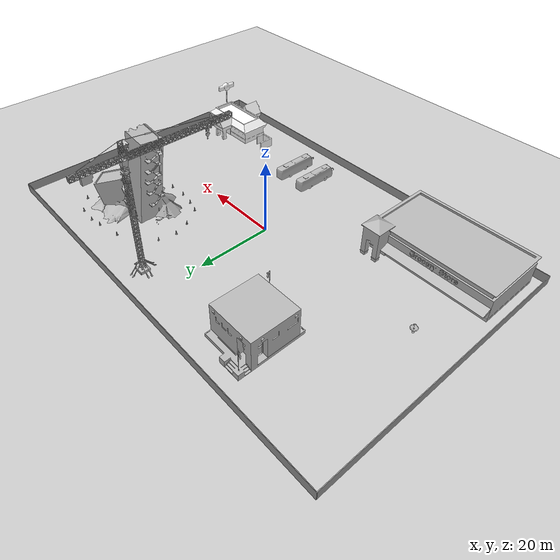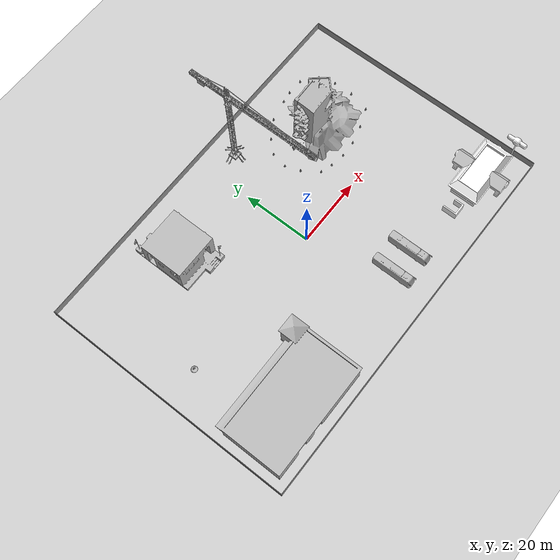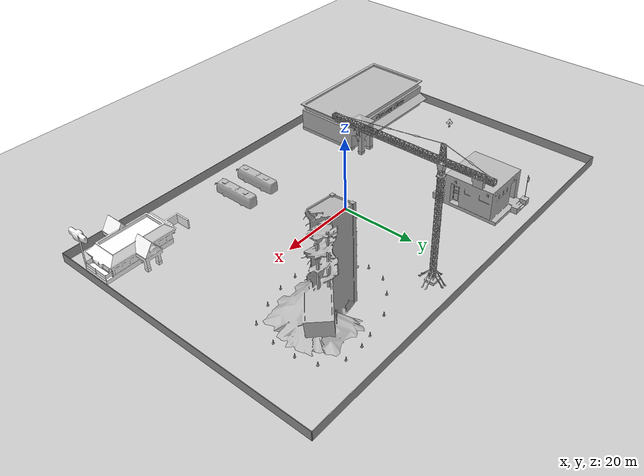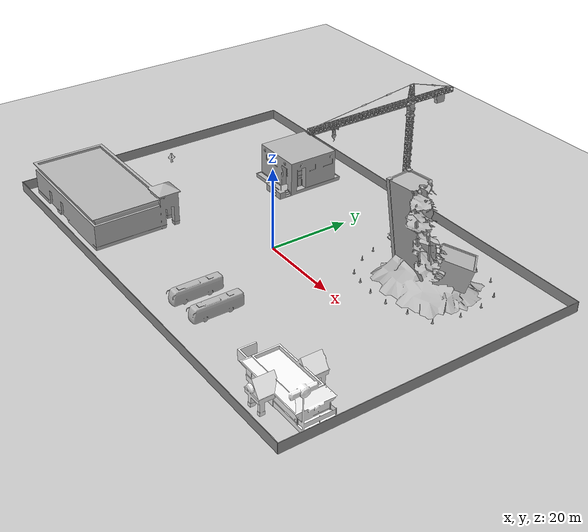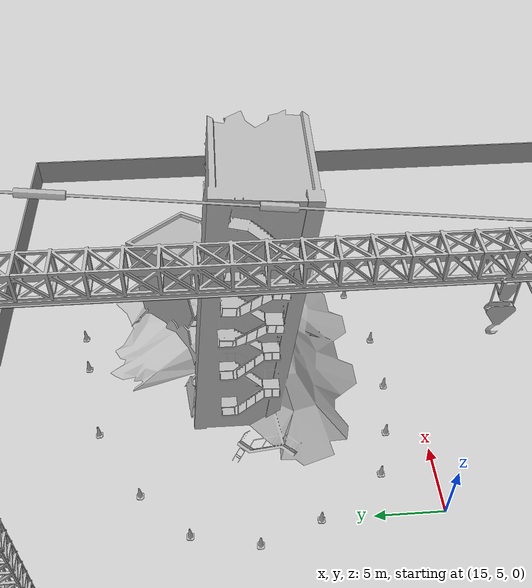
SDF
<sdf version="1.7">
 <world name="default">
  <light name="sun" type="directional">
   <pose>0 0 10 0 -0 0</pose>
   <diffuse>0.8 0.8 0.8 1</diffuse>
   <specular>0.2 0.2 0.2 1</specular>
   <attenuation>
    <range>1000</range>
    <constant>0.9</constant>
    <linear>0.01</linear>
    <quadratic>0.001</quadratic>
   </attenuation>
   <direction>-0.5 0.1 -0.9</direction>
   <spot><inner_angle>0</inner_angle><outer_angle>0</outer_angle><falloff>0</falloff></spot>
  </light>
  <model name="ground_plane">
   <static>1</static>
   <link name="link">
    <collision name="collision">
     <geometry><plane><normal>0 0 1</normal><size>100 100</size></plane></geometry>
     <surface><friction><ode><mu>100</mu><mu2>50</mu2></ode></friction></surface>
    </collision>
    <visual name="visual">
     <cast_shadows>0</cast_shadows>
     <geometry><plane><normal>0 0 1</normal><size>100 100</size></plane></geometry>
     <material>
      <script><uri>file://media/materials/scripts/gazebo.material</uri><name>Gazebo/Grey</name></script>
     </material>
    </visual>
   </link>
  </model>
  <gravity>0 0 -9.8</gravity>
  <magnetic_field>6e-06 2.3e-05 -4.2e-05</magnetic_field>
  <atmosphere type="adiabatic"/>
  <physics type="ode">
   <max_step_size>0.001</max_step_size>
   <real_time_factor>1</real_time_factor>
   <real_time_update_rate>1000</real_time_update_rate>
  </physics>
  <scene><ambient>0.4 0.4 0.4 1</ambient><background>0.7 0.7 0.7 1</background><shadows>1</shadows></scene>
  <spherical_coordinates>
   <surface_model>EARTH_WGS84</surface_model>
   <latitude_deg>0</latitude_deg>
   <longitude_deg>0</longitude_deg>
   <elevation>0</elevation>
   <heading_deg>0</heading_deg>
  </spherical_coordinates>
  <model name="micropolis1">
   <pose>-0.653694 1.07138 0 0 -0 0</pose>
   <link name="Wall_6">
    <collision name="Wall_6_Collision">
     <geometry><box><size>74 0.15 2.5</size></box></geometry>
     <pose>0 0 1.25 0 -0 0</pose>
    </collision>
    <visual name="Wall_6_Visual">
     <pose>0 0 1.25 0 -0 0</pose>
     <geometry><box><size>74 0.15 2.5</size></box></geometry>
     <material>
      <script><uri>file://media/materials/scripts/gazebo.material</uri><name>Gazebo/Grey</name></script>
      <ambient>1 1 1 1</ambient>
     </material>
     <meta><layer>0</layer></meta>
    </visual>
    <pose>-55.425 -1e-06 0 0 -0 -1.5708</pose>
   </link>
   <link name="Wall_7">
    <collision name="Wall_7_Collision">
     <geometry><box><size>111 0.15 2.5</size></box></geometry>
     <pose>0 0 1.25 0 -0 0</pose>
    </collision>
    <visual name="Wall_7_Visual">
     <pose>0 0 1.25 0 -0 0</pose>
     <geometry><box><size>111 0.15 2.5</size></box></geometry>
     <material>
      <script><uri>file://media/materials/scripts/gazebo.material</uri><name>Gazebo/Grey</name></script>
      <ambient>1 1 1 1</ambient>
     </material>
     <meta><layer>0</layer></meta>
    </visual>
    <pose>1e-06 -36.925 0 0 -0 0</pose>
   </link>
   <link name="Wall_8">
    <collision name="Wall_8_Collision">
     <geometry><box><size>74 0.15 2.5</size></box></geometry>
     <pose>0 0 1.25 0 -0 0</pose>
    </collision>
    <visual name="Wall_8_Visual">
     <pose>0 0 1.25 0 -0 0</pose>
     <geometry><box><size>74 0.15 2.5</size></box></geometry>
     <material>
      <script><uri>file://media/materials/scripts/gazebo.material</uri><name>Gazebo/Grey</name></script>
      <ambient>1 1 1 1</ambient>
     </material>
     <meta><layer>0</layer></meta>
    </visual>
    <pose>55.425 -1e-06 0 0 -0 1.5708</pose>
   </link>
   <link name="Wall_9">
    <collision name="Wall_9_Collision">
     <geometry><box><size>111 0.15 2.5</size></box></geometry>
     <pose>0 0 1.25 0 -0 0</pose>
    </collision>
    <visual name="Wall_9_Visual">
     <pose>0 0 1.25 0 -0 0</pose>
     <geometry><box><size>111 0.15 2.5</size></box></geometry>
     <material>
      <script><uri>file://media/materials/scripts/gazebo.material</uri><name>Gazebo/Grey</name></script>
      <ambient>1 1 1 1</ambient>
     </material>
     <meta><layer>0</layer></meta>
    </visual>
    <pose>1e-06 36.925 0 0 -0 3.14159</pose>
   </link>
   <static>1</static>
  </model>
  <model name="grocery_store">
   <static>1</static>
   <link name="link">
    <collision name="collision">
     <pose>0 0 4.04605 0 -0 0</pose>
     <geometry><box><size>32.1985 17.5425 8.09209</size></box></geometry>
    </collision>
    <visual name="visual">
     <pose>0 -1.96155 0 0 -0 0</pose>
     <geometry><mesh><uri>model://grocery_store/meshes/grocery_store.dae</uri></mesh></geometry>
    </visual>
   </link>
   <pose>-37.3001 -24.3599 0 0 -0 0</pose>
  </model>
  <model name="fountain">
   <static>1</static>
   <link name="link">
    <collision name="collision">
     <geometry><mesh><uri>model://fountain/meshes/fountain.dae</uri></mesh></geometry>
    </collision>
    <visual name="visual">
     <geometry><mesh><uri>model://fountain/meshes/fountain.dae</uri></mesh></geometry>
    </visual>
   </link>
   <pose>-45.6807 -0.11145 2.01549 0 -0 0</pose>
  </model>
  <model name="Fast Food">
   <static>1</static>
   <link name="link">
    <pose>0 0 3.15931 0 -0 0</pose>
    <collision name="collision">
     <geometry><mesh><scale>3 3 2</scale><uri>model://fast_food/meshes/fast_food.dae</uri></mesh></geometry>
    </collision>
    <visual name="visual">
     <geometry><mesh><scale>3 3 2</scale><uri>model://fast_food/meshes/fast_food.dae</uri></mesh></geometry>
     <material>
      <script>
       <uri>model://fast_food/materials/scripts</uri>
       <uri>model://fast_food/materials/textures</uri>
       <name>FastFood/Diffuse</name>
      </script>
      <shader type="normal_map_tangent_space"><normal_map>FastFood_Normal.png</normal_map></shader>
     </material>
    </visual>
   </link>
   <pose>43.2195 -25.9619 0 0 -0 0</pose>
  </model>
  <model name="Construction Cone">
   <link name="link">
    <collision name="collision">
     <geometry>
      <mesh><scale>10 10 10</scale><uri>model://construction_cone/meshes/construction_cone.dae</uri></mesh>
     </geometry>
    </collision>
    <visual name="visual">
     <geometry>
      <mesh><scale>10 10 10</scale><uri>model://construction_cone/meshes/construction_cone.dae</uri></mesh>
     </geometry>
    </visual>
    <inertial>
     <inertia><ixx>1</ixx><ixy>0</ixy><ixz>0</ixz><iyy>1</iyy><iyz>0</iyz><izz>1</izz></inertia>
     <mass>1</mass>
    </inertial>
   </link>
   <pose>30.6168 7.44385 -0 0 -0 0</pose>
  </model>
  <model name="collapsed_industrial">
   <static>1</static>
   <link name="link">
    <collision name="collision">
     <geometry><mesh><uri>model://collapsed_industrial/meshes/collapsed_industrial.dae</uri></mesh></geometry>
    </collision>
    <visual name="visual">
     <geometry><mesh><uri>model://collapsed_industrial/meshes/collapsed_industrial.dae</uri></mesh></geometry>
    </visual>
   </link>
   <pose>29.662 18.1099 0 0 -0 0</pose>
  </model>
  <model name="bus">
   <static>1</static>
   <link name="link">
    <collision name="collision">
     <geometry><mesh><scale>0.01 0.01 0.01</scale><uri>model://bus/meshes/bus.obj</uri></mesh></geometry>
    </collision>
    <visual name="visual">
     <geometry><mesh><scale>0.01 0.01 0.01</scale><uri>model://bus/meshes/bus.obj</uri></mesh></geometry>
    </visual>
   </link>
   <pose>14.0417 -23.3638 0 0 -0 0</pose>
  </model>
  <model name="Construction Cone_clone">
   <link name="link">
    <collision name="collision">
     <geometry>
      <mesh><scale>10 10 10</scale><uri>model://construction_cone/meshes/construction_cone.dae</uri></mesh>
     </geometry>
    </collision>
    <visual name="visual">
     <geometry>
      <mesh><scale>10 10 10</scale><uri>model://construction_cone/meshes/construction_cone.dae</uri></mesh>
     </geometry>
    </visual>
    <inertial>
     <inertia><ixx>1</ixx><ixy>0</ixy><ixz>0</ixz><iyy>1</iyy><iyz>0</iyz><izz>1</izz></inertia>
     <mass>1</mass>
    </inertial>
   </link>
   <pose>29.1521 30.6179 -0 -0 -0 -0</pose>
  </model>
  <model name="Construction Cone_clone_0">
   <link name="link">
    <collision name="collision">
     <geometry>
      <mesh><scale>10 10 10</scale><uri>model://construction_cone/meshes/construction_cone.dae</uri></mesh>
     </geometry>
    </collision>
    <visual name="visual">
     <geometry>
      <mesh><scale>10 10 10</scale><uri>model://construction_cone/meshes/construction_cone.dae</uri></mesh>
     </geometry>
    </visual>
    <inertial>
     <inertia><ixx>1</ixx><ixy>0</ixy><ixz>0</ixz><iyy>1</iyy><iyz>0</iyz><izz>1</izz></inertia>
     <mass>1</mass>
    </inertial>
   </link>
   <pose>35.922 8.83085 -0 0 -1e-06 0</pose>
  </model>
  <model name="Construction Cone_clone_1">
   <link name="link">
    <collision name="collision">
     <geometry>
      <mesh><scale>10 10 10</scale><uri>model://construction_cone/meshes/construction_cone.dae</uri></mesh>
     </geometry>
    </collision>
    <visual name="visual">
     <geometry>
      <mesh><scale>10 10 10</scale><uri>model://construction_cone/meshes/construction_cone.dae</uri></mesh>
     </geometry>
    </visual>
    <inertial>
     <inertia><ixx>1</ixx><ixy>0</ixy><ixz>0</ixz><iyy>1</iyy><iyz>0</iyz><izz>1</izz></inertia>
     <mass>1</mass>
    </inertial>
   </link>
   <pose>32.4381 31.1651 -0 0 -0 0</pose>
  </model>
  <model name="Construction Cone_clone_2">
   <link name="link">
    <collision name="collision">
     <geometry>
      <mesh><scale>10 10 10</scale><uri>model://construction_cone/meshes/construction_cone.dae</uri></mesh>
     </geometry>
    </collision>
    <visual name="visual">
     <geometry>
      <mesh><scale>10 10 10</scale><uri>model://construction_cone/meshes/construction_cone.dae</uri></mesh>
     </geometry>
    </visual>
    <inertial>
     <inertia><ixx>1</ixx><ixy>0</ixy><ixz>0</ixz><iyy>1</iyy><iyz>0</iyz><izz>1</izz></inertia>
     <mass>1</mass>
    </inertial>
   </link>
   <pose>41.4714 27.6128 -0 -0 -0 -0</pose>
  </model>
  <model name="Construction Cone_clone_3">
   <link name="link">
    <collision name="collision">
     <geometry>
      <mesh><scale>10 10 10</scale><uri>model://construction_cone/meshes/construction_cone.dae</uri></mesh>
     </geometry>
    </collision>
    <visual name="visual">
     <geometry>
      <mesh><scale>10 10 10</scale><uri>model://construction_cone/meshes/construction_cone.dae</uri></mesh>
     </geometry>
    </visual>
    <inertial>
     <inertia><ixx>1</ixx><ixy>0</ixy><ixz>0</ixz><iyy>1</iyy><iyz>0</iyz><izz>1</izz></inertia>
     <mass>1</mass>
    </inertial>
   </link>
   <pose>42.8179 17.0654 -0 0 -1e-06 0</pose>
  </model>
  <model name="Construction Cone_clone_4">
   <link name="link">
    <collision name="collision">
     <geometry>
      <mesh><scale>10 10 10</scale><uri>model://construction_cone/meshes/construction_cone.dae</uri></mesh>
     </geometry>
    </collision>
    <visual name="visual">
     <geometry>
      <mesh><scale>10 10 10</scale><uri>model://construction_cone/meshes/construction_cone.dae</uri></mesh>
     </geometry>
    </visual>
    <inertial>
     <inertia><ixx>1</ixx><ixy>0</ixy><ixz>0</ixz><iyy>1</iyy><iyz>0</iyz><izz>1</izz></inertia>
     <mass>1</mass>
    </inertial>
   </link>
   <pose>37.0665 30.9645 -0 0 -0 0</pose>
  </model>
  <model name="Construction Cone_clone_5">
   <link name="link">
    <collision name="collision">
     <geometry>
      <mesh><scale>10 10 10</scale><uri>model://construction_cone/meshes/construction_cone.dae</uri></mesh>
     </geometry>
    </collision>
    <visual name="visual">
     <geometry>
      <mesh><scale>10 10 10</scale><uri>model://construction_cone/meshes/construction_cone.dae</uri></mesh>
     </geometry>
    </visual>
    <inertial>
     <inertia><ixx>1</ixx><ixy>0</ixy><ixz>0</ixz><iyy>1</iyy><iyz>0</iyz><izz>1</izz></inertia>
     <mass>1</mass>
    </inertial>
   </link>
   <pose>42.7653 22.7699 -0 0 -1e-06 0</pose>
  </model>
  <model name="Construction Cone_clone_6">
   <link name="link">
    <collision name="collision">
     <geometry>
      <mesh><scale>10 10 10</scale><uri>model://construction_cone/meshes/construction_cone.dae</uri></mesh>
     </geometry>
    </collision>
    <visual name="visual">
     <geometry>
      <mesh><scale>10 10 10</scale><uri>model://construction_cone/meshes/construction_cone.dae</uri></mesh>
     </geometry>
    </visual>
    <inertial>
     <inertia><ixx>1</ixx><ixy>0</ixy><ixz>0</ixz><iyy>1</iyy><iyz>0</iyz><izz>1</izz></inertia>
     <mass>1</mass>
    </inertial>
   </link>
   <pose>41.2899 10.8734 0 -0 -0 -0</pose>
  </model>
  <model name="Construction Cone_clone_7">
   <link name="link">
    <collision name="collision">
     <geometry>
      <mesh><scale>10 10 10</scale><uri>model://construction_cone/meshes/construction_cone.dae</uri></mesh>
     </geometry>
    </collision>
    <visual name="visual">
     <geometry>
      <mesh><scale>10 10 10</scale><uri>model://construction_cone/meshes/construction_cone.dae</uri></mesh>
     </geometry>
    </visual>
    <inertial>
     <inertia><ixx>1</ixx><ixy>0</ixy><ixz>0</ixz><iyy>1</iyy><iyz>0</iyz><izz>1</izz></inertia>
     <mass>1</mass>
    </inertial>
   </link>
   <pose>22.8574 29.2983 -0 0 -0 0</pose>
  </model>
  <model name="Construction Cone_clone_8">
   <link name="link">
    <collision name="collision">
     <geometry>
      <mesh><scale>10 10 10</scale><uri>model://construction_cone/meshes/construction_cone.dae</uri></mesh>
     </geometry>
    </collision>
    <visual name="visual">
     <geometry>
      <mesh><scale>10 10 10</scale><uri>model://construction_cone/meshes/construction_cone.dae</uri></mesh>
     </geometry>
    </visual>
    <inertial>
     <inertia><ixx>1</ixx><ixy>0</ixy><ixz>0</ixz><iyy>1</iyy><iyz>0</iyz><izz>1</izz></inertia>
     <mass>1</mass>
    </inertial>
   </link>
   <pose>17.6024 26.0288 -0 0 -1e-06 0</pose>
  </model>
  <model name="Construction Cone_clone_9">
   <link name="link">
    <collision name="collision">
     <geometry>
      <mesh><scale>10 10 10</scale><uri>model://construction_cone/meshes/construction_cone.dae</uri></mesh>
     </geometry>
    </collision>
    <visual name="visual">
     <geometry>
      <mesh><scale>10 10 10</scale><uri>model://construction_cone/meshes/construction_cone.dae</uri></mesh>
     </geometry>
    </visual>
    <inertial>
     <inertia><ixx>1</ixx><ixy>0</ixy><ixz>0</ixz><iyy>1</iyy><iyz>0</iyz><izz>1</izz></inertia>
     <mass>1</mass>
    </inertial>
   </link>
   <pose>14.39 22.5434 -0 0 -1e-06 0</pose>
  </model>
  <model name="Construction Cone_clone_10">
   <link name="link">
    <collision name="collision">
     <geometry>
      <mesh><scale>10 10 10</scale><uri>model://construction_cone/meshes/construction_cone.dae</uri></mesh>
     </geometry>
    </collision>
    <visual name="visual">
     <geometry>
      <mesh><scale>10 10 10</scale><uri>model://construction_cone/meshes/construction_cone.dae</uri></mesh>
     </geometry>
    </visual>
    <inertial>
     <inertia><ixx>1</ixx><ixy>0</ixy><ixz>0</ixz><iyy>1</iyy><iyz>0</iyz><izz>1</izz></inertia>
     <mass>1</mass>
    </inertial>
   </link>
   <pose>13.4513 17.8796 -0 0 -0 0</pose>
  </model>
  <model name="Construction Cone_clone_11">
   <link name="link">
    <collision name="collision">
     <geometry>
      <mesh><scale>10 10 10</scale><uri>model://construction_cone/meshes/construction_cone.dae</uri></mesh>
     </geometry>
    </collision>
    <visual name="visual">
     <geometry>
      <mesh><scale>10 10 10</scale><uri>model://construction_cone/meshes/construction_cone.dae</uri></mesh>
     </geometry>
    </visual>
    <inertial>
     <inertia><ixx>1</ixx><ixy>0</ixy><ixz>0</ixz><iyy>1</iyy><iyz>0</iyz><izz>1</izz></inertia>
     <mass>1</mass>
    </inertial>
   </link>
   <pose>14.9668 13.6149 -0 0 -0 0</pose>
  </model>
  <model name="Construction Cone_clone_12">
   <link name="link">
    <collision name="collision">
     <geometry>
      <mesh><scale>10 10 10</scale><uri>model://construction_cone/meshes/construction_cone.dae</uri></mesh>
     </geometry>
    </collision>
    <visual name="visual">
     <geometry>
      <mesh><scale>10 10 10</scale><uri>model://construction_cone/meshes/construction_cone.dae</uri></mesh>
     </geometry>
    </visual>
    <inertial>
     <inertia><ixx>1</ixx><ixy>0</ixy><ixz>0</ixz><iyy>1</iyy><iyz>0</iyz><izz>1</izz></inertia>
     <mass>1</mass>
    </inertial>
   </link>
   <pose>18.1614 8.90429 -0 0 -0 0</pose>
  </model>
  <model name="Construction Cone_clone_13">
   <link name="link">
    <collision name="collision">
     <geometry>
      <mesh><scale>10 10 10</scale><uri>model://construction_cone/meshes/construction_cone.dae</uri></mesh>
     </geometry>
    </collision>
    <visual name="visual">
     <geometry>
      <mesh><scale>10 10 10</scale><uri>model://construction_cone/meshes/construction_cone.dae</uri></mesh>
     </geometry>
    </visual>
    <inertial>
     <inertia><ixx>1</ixx><ixy>0</ixy><ixz>0</ixz><iyy>1</iyy><iyz>0</iyz><izz>1</izz></inertia>
     <mass>1</mass>
    </inertial>
   </link>
   <pose>25.862 7.24299 -1e-05 0 -0 0</pose>
  </model>
  <model name="Construction Cone_clone_14">
   <link name="link">
    <collision name="collision">
     <geometry>
      <mesh><scale>10 10 10</scale><uri>model://construction_cone/meshes/construction_cone.dae</uri></mesh>
     </geometry>
    </collision>
    <visual name="visual">
     <geometry>
      <mesh><scale>10 10 10</scale><uri>model://construction_cone/meshes/construction_cone.dae</uri></mesh>
     </geometry>
    </visual>
    <inertial>
     <inertia><ixx>1</ixx><ixy>0</ixy><ixz>0</ixz><iyy>1</iyy><iyz>0</iyz><izz>1</izz></inertia>
     <mass>1</mass>
    </inertial>
   </link>
   <pose>21.5682 7.91441 0 -0 -0 -0</pose>
  </model>
  <model name="bus_clone">
   <static>1</static>
   <link name="link">
    <collision name="collision">
     <geometry><mesh><scale>0.01 0.01 0.01</scale><uri>model://bus/meshes/bus.obj</uri></mesh></geometry>
    </collision>
    <visual name="visual">
     <geometry><mesh><scale>0.01 0.01 0.01</scale><uri>model://bus/meshes/bus.obj</uri></mesh></geometry>
    </visual>
   </link>
   <pose>6.47574 -23.6919 0 0 -0 0</pose>
  </model>
  <model name="tower_crane">
   <static>1</static>
   <link name="link">
    <collision name="collision">
     <geometry><mesh><uri>model://tower_crane/meshes/tower_crane.dae</uri></mesh></geometry>
    </collision>
    <visual name="visual">
     <geometry><mesh><uri>model://tower_crane/meshes/tower_crane.dae</uri></mesh></geometry>
    </visual>
   </link>
   <pose>7.86888 30.9507 0 0 -0 0</pose>
  </model>
  <model name="police_station">
   <static>1</static>
   <link name="link">
    <collision name="collision_main">
     <pose>0 0 4.28998 0 -0 0</pose>
     <geometry><box><size>13.037 13.037 8.57995</size></box></geometry>
    </collision>
    <collision name="collision_landing">
     <pose>0 0 0.464086 0 -0 0</pose>
     <geometry><box><size>13.037 16.2446 0.928173</size></box></geometry>
    </collision>
    <visual name="visual">
     <geometry><mesh><uri>model://police_station/meshes/police_station.dae</uri></mesh></geometry>
    </visual>
   </link>
   <pose>-23.8355 23.5954 0 0 -0 0</pose>
  </model>
 </world>
</sdf>
